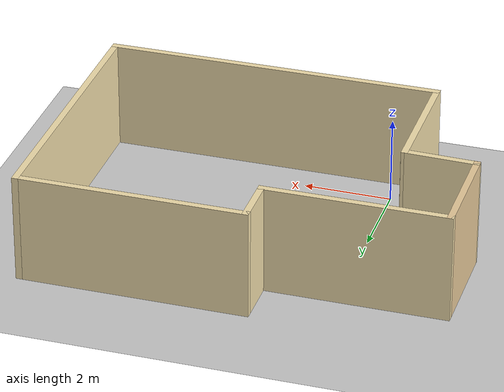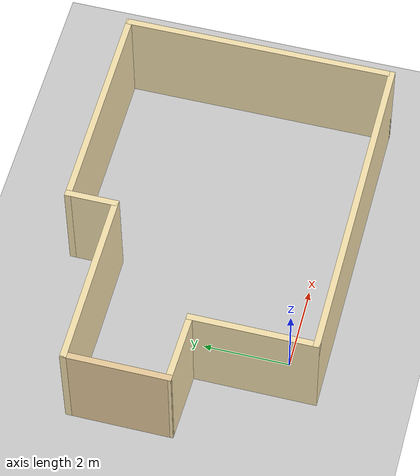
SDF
<sdf version="1.7">
 <world name="default">
  <light name="sun" type="directional">
   <pose>0 0 10 0 -0 0</pose>
   <diffuse>0.8 0.8 0.8 1</diffuse>
   <specular>0.2 0.2 0.2 1</specular>
   <attenuation>
    <range>1000</range>
    <constant>0.9</constant>
    <linear>0.01</linear>
    <quadratic>0.001</quadratic>
   </attenuation>
   <direction>-0.5 0.1 -0.9</direction>
   <spot><inner_angle>0</inner_angle><outer_angle>0</outer_angle><falloff>0</falloff></spot>
  </light>
  <model name="ground_plane">
   <static>1</static>
   <link name="link">
    <collision name="collision">
     <geometry><plane><normal>0 0 1</normal><size>100 100</size></plane></geometry>
     <surface>
      <contact><collide_bitmask>65535</collide_bitmask></contact>
      <friction><ode><mu>100</mu><mu2>50</mu2></ode></friction>
     </surface>
    </collision>
    <visual name="visual">
     <cast_shadows>0</cast_shadows>
     <geometry><plane><normal>0 0 1</normal><size>100 100</size></plane></geometry>
     <material>
      <script><uri>file://media/materials/scripts/gazebo.material</uri><name>Gazebo/Grey</name></script>
     </material>
    </visual>
   </link>
  </model>
  <gravity>0 0 -9.8</gravity>
  <magnetic_field>6e-06 2.3e-05 -4.2e-05</magnetic_field>
  <atmosphere type="adiabatic"/>
  <physics type="ode">
   <max_step_size>0.001</max_step_size>
   <real_time_factor>1</real_time_factor>
   <real_time_update_rate>1000</real_time_update_rate>
  </physics>
  <scene><ambient>0.4 0.4 0.4 1</ambient><background>0.7 0.7 0.7 1</background><shadows>1</shadows></scene>
  <spherical_coordinates>
   <surface_model>EARTH_WGS84</surface_model>
   <latitude_deg>0</latitude_deg>
   <longitude_deg>0</longitude_deg>
   <elevation>0</elevation>
   <heading_deg>0</heading_deg>
  </spherical_coordinates>
  <model name="room">
   <pose>2.19339 2.40945 0 0 -0 0</pose>
   <link name="Wall_0">
    <collision name="Wall_0_Collision">
     <geometry><box><size>3 0.15 2.5</size></box></geometry>
     <pose>0 0 1.25 0 -0 0</pose>
    </collision>
    <visual name="Wall_0_Visual">
     <pose>0 0 1.25 0 -0 0</pose>
     <geometry><box><size>3 0.15 2.5</size></box></geometry>
     <material>
      <script><uri>file://media/materials/scripts/gazebo.material</uri><name>Gazebo/Grey</name></script>
      <ambient>0.964706 0.890196 0.686275 1</ambient>
     </material>
     <meta><layer>0</layer></meta>
    </visual>
    <pose>-2.99885 -1.75 0 0 -0 -1.5708</pose>
   </link>
   <link name="Wall_1">
    <collision name="Wall_1_Collision">
     <geometry><box><size>7.75 0.15 2.5</size></box></geometry>
     <pose>0 0 1.25 0 -0 0</pose>
    </collision>
    <visual name="Wall_1_Visual">
     <pose>0 0 1.25 0 -0 0</pose>
     <geometry><box><size>7.75 0.15 2.5</size></box></geometry>
     <material>
      <script><uri>file://media/materials/scripts/gazebo.material</uri><name>Gazebo/Grey</name></script>
      <ambient>0.964706 0.890196 0.686275 1</ambient>
     </material>
     <meta><layer>0</layer></meta>
    </visual>
    <pose>0.801153 -3.175 0 0 -0 0</pose>
   </link>
   <link name="Wall_2">
    <collision name="Wall_2_Collision">
     <geometry><box><size>6.5 0.15 2.5</size></box></geometry>
     <pose>0 0 1.25 0 -0 0</pose>
    </collision>
    <visual name="Wall_2_Visual">
     <pose>0 0 1.25 0 -0 0</pose>
     <geometry><box><size>6.5 0.15 2.5</size></box></geometry>
     <material>
      <script><uri>file://media/materials/scripts/gazebo.material</uri><name>Gazebo/Grey</name></script>
      <ambient>0.964706 0.890196 0.686275 1</ambient>
     </material>
     <meta><layer>0</layer></meta>
    </visual>
    <pose>4.60115 0 0 0 -0 1.5708</pose>
   </link>
   <link name="Wall_3">
    <collision name="Wall_3_Collision">
     <geometry><box><size>5.25 0.15 2.5</size></box></geometry>
     <pose>0 0 1.25 0 -0 0</pose>
    </collision>
    <visual name="Wall_3_Visual">
     <pose>0 0 1.25 0 -0 0</pose>
     <geometry><box><size>5.25 0.15 2.5</size></box></geometry>
     <material>
      <script><uri>file://media/materials/scripts/gazebo.material</uri><name>Gazebo/Grey</name></script>
      <ambient>0.964706 0.890196 0.686275 1</ambient>
     </material>
     <meta><layer>0</layer></meta>
    </visual>
    <pose>2.05115 3.175 0 0 -0 3.14159</pose>
   </link>
   <link name="Wall_4">
    <collision name="Wall_4_Collision">
     <geometry><box><size>1.25 0.15 2.5</size></box></geometry>
     <pose>0 0 1.25 0 -0 0</pose>
    </collision>
    <visual name="Wall_4_Visual">
     <pose>0 0 1.25 0 -0 0</pose>
     <geometry><box><size>1.25 0.15 2.5</size></box></geometry>
     <material>
      <script><uri>file://media/materials/scripts/gazebo.material</uri><name>Gazebo/Grey</name></script>
      <ambient>0.964706 0.890196 0.686275 1</ambient>
     </material>
     <meta><layer>0</layer></meta>
    </visual>
    <pose>-0.498847 2.625 0 0 -0 -1.5708</pose>
   </link>
   <link name="Wall_5">
    <collision name="Wall_5_Collision">
     <geometry><box><size>4.25 0.15 2.5</size></box></geometry>
     <pose>0 0 1.25 0 -0 0</pose>
    </collision>
    <visual name="Wall_5_Visual">
     <pose>0 0 1.25 0 -0 0</pose>
     <geometry><box><size>4.25 0.15 2.5</size></box></geometry>
     <material>
      <script><uri>file://media/materials/scripts/gazebo.material</uri><name>Gazebo/Grey</name></script>
      <ambient>0.964706 0.890196 0.686275 1</ambient>
     </material>
     <meta><layer>0</layer></meta>
    </visual>
    <pose>-2.54885 2.075 0 0 -0 3.14159</pose>
   </link>
   <link name="Wall_6">
    <collision name="Wall_6_Collision">
     <geometry><box><size>2.5 0.15 2.5</size></box></geometry>
     <pose>0 0 1.25 0 -0 0</pose>
    </collision>
    <visual name="Wall_6_Visual">
     <pose>0 0 1.25 0 -0 0</pose>
     <geometry><box><size>2.5 0.15 2.5</size></box></geometry>
     <material>
      <script><uri>file://media/materials/scripts/gazebo.material</uri><name>Gazebo/Grey</name></script>
      <ambient>0.921569 0.807843 0.615686 1</ambient>
     </material>
     <meta><layer>0</layer></meta>
    </visual>
    <pose>-4.59885 0.9 0 0 -0 -1.5708</pose>
   </link>
   <link name="Wall_7">
    <collision name="Wall_7_Collision">
     <geometry><box><size>1.75078 0.15 2.5</size></box></geometry>
     <pose>0 0 1.25 0 -0 0</pose>
    </collision>
    <visual name="Wall_7_Visual">
     <pose>0 0 1.25 0 -0 0</pose>
     <geometry><box><size>1.75078 0.15 2.5</size></box></geometry>
     <material>
      <script><uri>file://media/materials/scripts/gazebo.material</uri><name>Gazebo/Grey</name></script>
      <ambient>0.964706 0.890196 0.686275 1</ambient>
     </material>
     <meta><layer>0</layer></meta>
    </visual>
    <pose>-3.79885 -0.3 0 0 -0 -0.03124</pose>
   </link>
   <static>1</static>
  </model>
 </world>
</sdf>
